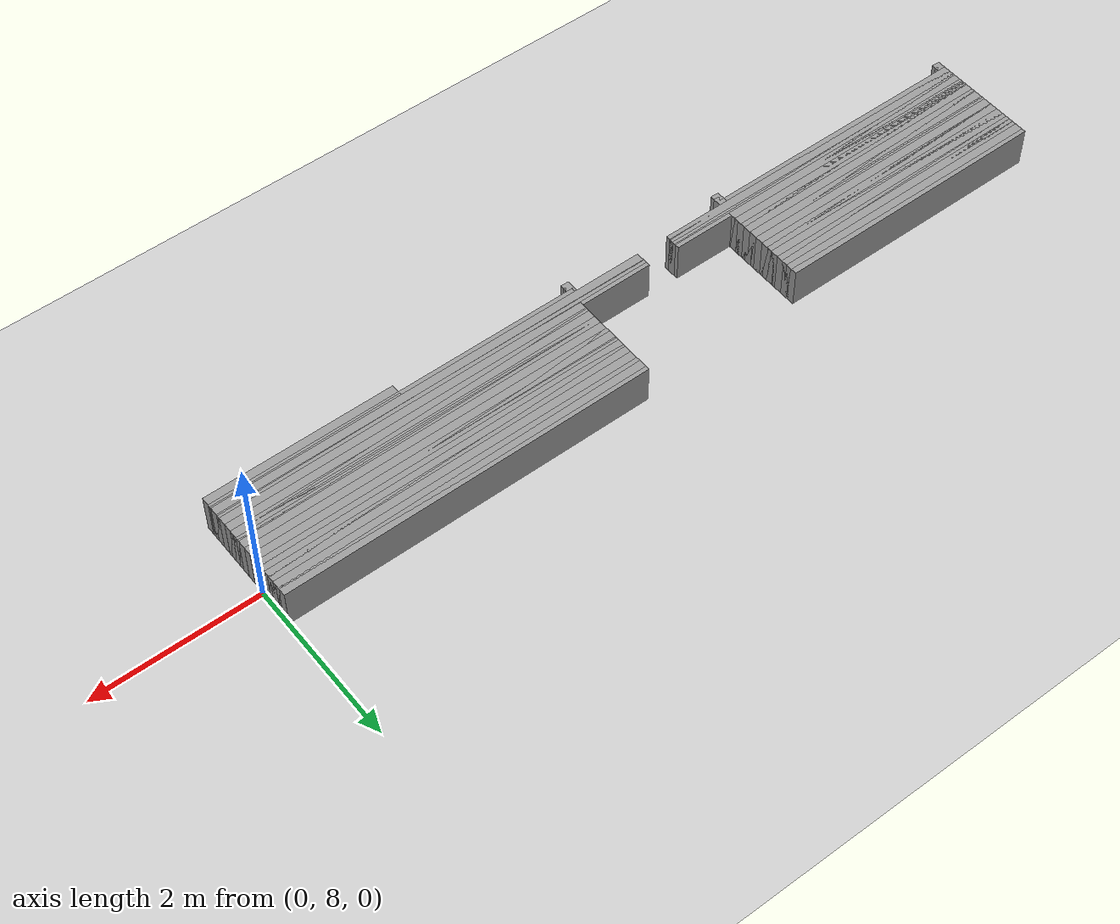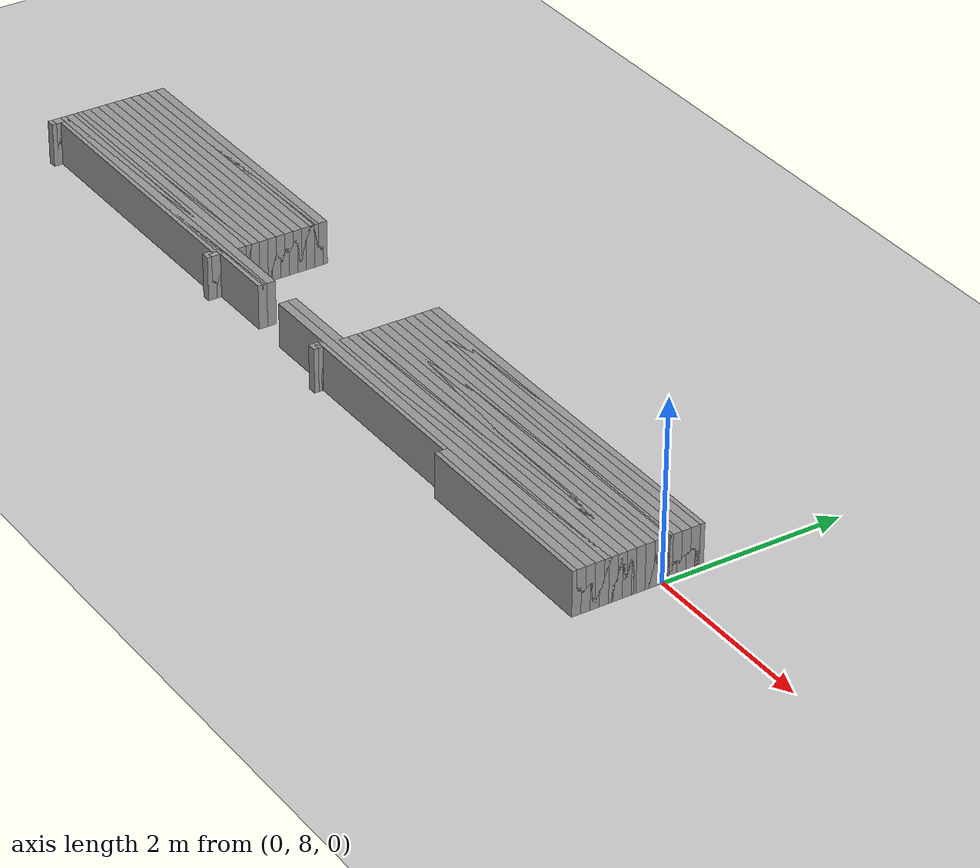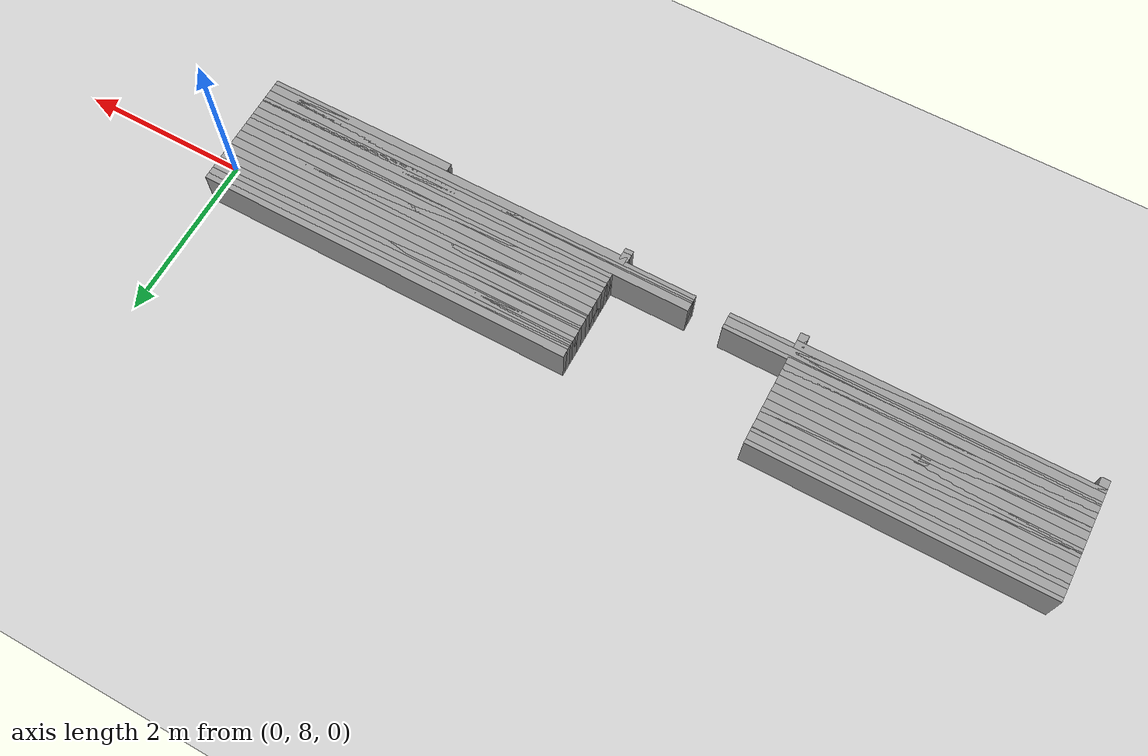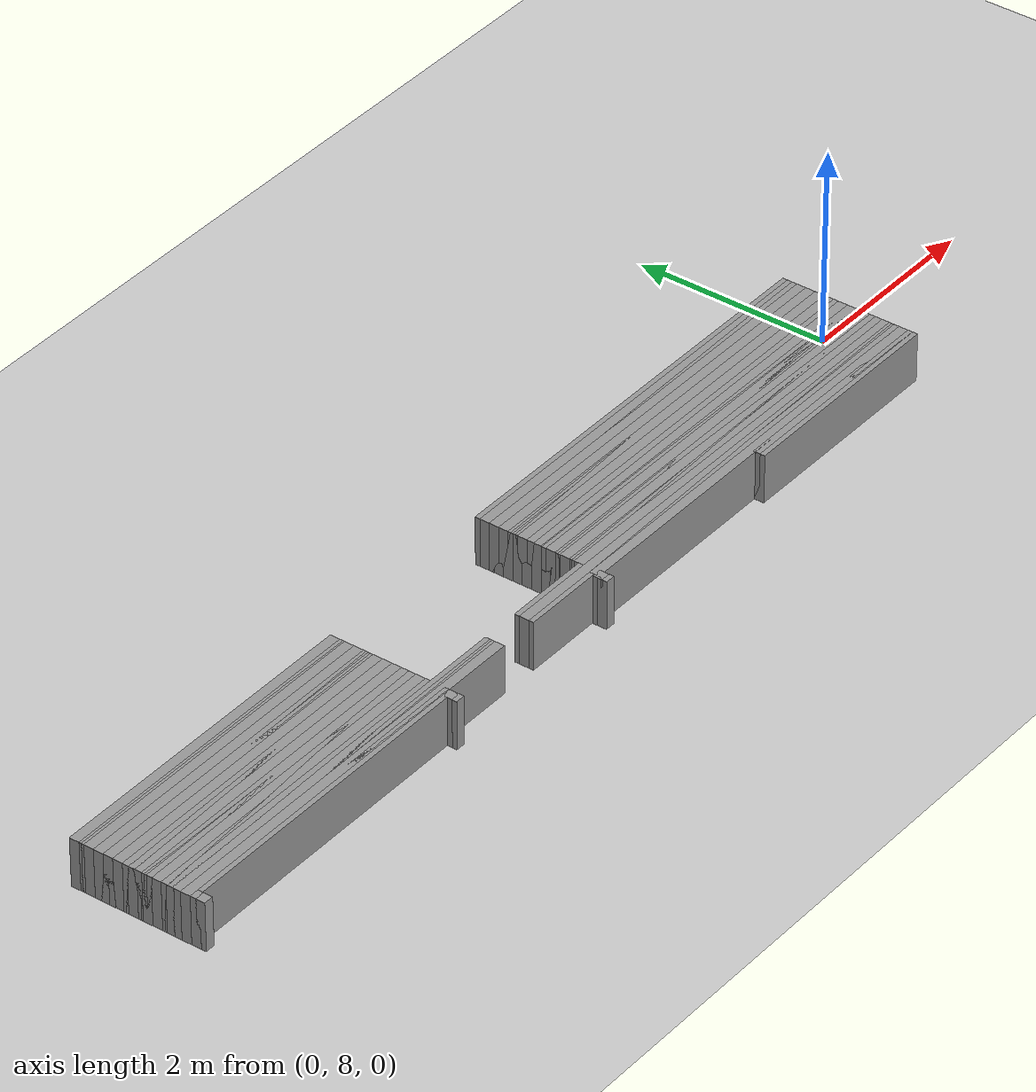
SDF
<sdf version="1.6">
 <world name="GridMap">
  <include><uri>model://sun</uri></include>
  <include><uri>model://ground_plane</uri></include>
  <model name="GridMap">
   <link name="Wall_(23.0,141.0)">
    <collision name="Wall_(23.0,141.0)_Collision">
     <geometry><box><size>2.3000000000000003 0.1 0.5</size></box></geometry>
     <pose>-1.1500000000000001 7.050000000000001 0.25 0 -0 0</pose>
    </collision>
    <inertial>
     <mass>0.5</mass>
     <pose>0 0.01 0 0 0 0</pose>
     <inertia><ixx>0.004</ixx><ixy>0.001</ixy><ixz>0</ixz><iyy>0.006</iyy><iyz>0</iyz><izz>0.007</izz></inertia>
    </inertial>
    <visual name="Wall_(23.0,141.0)_Visual">
     <geometry><box><size>2.3000000000000003 0.1 0.5</size></box></geometry>
     <pose>-1.1500000000000001 7.050000000000001 0.25 0 -0 0</pose>
     <material>
      <script><uri>file://media/materials/scripts/gazebo.material</uri><name>Gazebo/Grey</name></script>
      <ambient>1 1 1 1</ambient>
     </material>
     <meta><layer>0</layer></meta>
    </visual>
   </link>
   <link name="Wall_(90.5,141.0)">
    <collision name="Wall_(90.5,141.0)_Collision">
     <geometry><box><size>0.1 0.1 0.5</size></box></geometry>
     <pose>-4.525 7.050000000000001 0.25 0 -0 0</pose>
    </collision>
    <inertial>
     <mass>0.5</mass>
     <pose>0 0.01 0 0 0 0</pose>
     <inertia><ixx>0.004</ixx><ixy>0.001</ixy><ixz>0</ixz><iyy>0.006</iyy><iyz>0</iyz><izz>0.007</izz></inertia>
    </inertial>
    <visual name="Wall_(90.5,141.0)_Visual">
     <geometry><box><size>0.1 0.1 0.5</size></box></geometry>
     <pose>-4.525 7.050000000000001 0.25 0 -0 0</pose>
     <material>
      <script><uri>file://media/materials/scripts/gazebo.material</uri><name>Gazebo/Grey</name></script>
      <ambient>1 1 1 1</ambient>
     </material>
     <meta><layer>0</layer></meta>
    </visual>
   </link>
   <link name="Wall_(132.0,141.0)">
    <collision name="Wall_(132.0,141.0)_Collision">
     <geometry><box><size>0.1 0.1 0.5</size></box></geometry>
     <pose>-6.6000000000000005 7.050000000000001 0.25 0 -0 0</pose>
    </collision>
    <inertial>
     <mass>0.5</mass>
     <pose>0 0.01 0 0 0 0</pose>
     <inertia><ixx>0.004</ixx><ixy>0.001</ixy><ixz>0</ixz><iyy>0.006</iyy><iyz>0</iyz><izz>0.007</izz></inertia>
    </inertial>
    <visual name="Wall_(132.0,141.0)_Visual">
     <geometry><box><size>0.1 0.1 0.5</size></box></geometry>
     <pose>-6.6000000000000005 7.050000000000001 0.25 0 -0 0</pose>
     <material>
      <script><uri>file://media/materials/scripts/gazebo.material</uri><name>Gazebo/Grey</name></script>
      <ambient>1 1 1 1</ambient>
     </material>
     <meta><layer>0</layer></meta>
    </visual>
   </link>
   <link name="Wall_(198.0,141.0)">
    <collision name="Wall_(198.0,141.0)_Collision">
     <geometry><box><size>0.1 0.1 0.5</size></box></geometry>
     <pose>-9.9 7.050000000000001 0.25 0 -0 0</pose>
    </collision>
    <inertial>
     <mass>0.5</mass>
     <pose>0 0.01 0 0 0 0</pose>
     <inertia><ixx>0.004</ixx><ixy>0.001</ixy><ixz>0</ixz><iyy>0.006</iyy><iyz>0</iyz><izz>0.007</izz></inertia>
    </inertial>
    <visual name="Wall_(198.0,141.0)_Visual">
     <geometry><box><size>0.1 0.1 0.5</size></box></geometry>
     <pose>-9.9 7.050000000000001 0.25 0 -0 0</pose>
     <material>
      <script><uri>file://media/materials/scripts/gazebo.material</uri><name>Gazebo/Grey</name></script>
      <ambient>1 1 1 1</ambient>
     </material>
     <meta><layer>0</layer></meta>
    </visual>
   </link>
   <link name="Wall_(23.0,142.0)">
    <collision name="Wall_(23.0,142.0)_Collision">
     <geometry><box><size>2.3000000000000003 0.1 0.5</size></box></geometry>
     <pose>-1.1500000000000001 7.1000000000000005 0.25 0 -0 0</pose>
    </collision>
    <inertial>
     <mass>0.5</mass>
     <pose>0 0.01 0 0 0 0</pose>
     <inertia><ixx>0.004</ixx><ixy>0.001</ixy><ixz>0</ixz><iyy>0.006</iyy><iyz>0</iyz><izz>0.007</izz></inertia>
    </inertial>
    <visual name="Wall_(23.0,142.0)_Visual">
     <geometry><box><size>2.3000000000000003 0.1 0.5</size></box></geometry>
     <pose>-1.1500000000000001 7.1000000000000005 0.25 0 -0 0</pose>
     <material>
      <script><uri>file://media/materials/scripts/gazebo.material</uri><name>Gazebo/Grey</name></script>
      <ambient>1 1 1 1</ambient>
     </material>
     <meta><layer>0</layer></meta>
    </visual>
   </link>
   <link name="Wall_(90.5,142.0)">
    <collision name="Wall_(90.5,142.0)_Collision">
     <geometry><box><size>0.1 0.1 0.5</size></box></geometry>
     <pose>-4.525 7.1000000000000005 0.25 0 -0 0</pose>
    </collision>
    <inertial>
     <mass>0.5</mass>
     <pose>0 0.01 0 0 0 0</pose>
     <inertia><ixx>0.004</ixx><ixy>0.001</ixy><ixz>0</ixz><iyy>0.006</iyy><iyz>0</iyz><izz>0.007</izz></inertia>
    </inertial>
    <visual name="Wall_(90.5,142.0)_Visual">
     <geometry><box><size>0.1 0.1 0.5</size></box></geometry>
     <pose>-4.525 7.1000000000000005 0.25 0 -0 0</pose>
     <material>
      <script><uri>file://media/materials/scripts/gazebo.material</uri><name>Gazebo/Grey</name></script>
      <ambient>1 1 1 1</ambient>
     </material>
     <meta><layer>0</layer></meta>
    </visual>
   </link>
   <link name="Wall_(132.0,142.0)">
    <collision name="Wall_(132.0,142.0)_Collision">
     <geometry><box><size>0.1 0.1 0.5</size></box></geometry>
     <pose>-6.6000000000000005 7.1000000000000005 0.25 0 -0 0</pose>
    </collision>
    <inertial>
     <mass>0.5</mass>
     <pose>0 0.01 0 0 0 0</pose>
     <inertia><ixx>0.004</ixx><ixy>0.001</ixy><ixz>0</ixz><iyy>0.006</iyy><iyz>0</iyz><izz>0.007</izz></inertia>
    </inertial>
    <visual name="Wall_(132.0,142.0)_Visual">
     <geometry><box><size>0.1 0.1 0.5</size></box></geometry>
     <pose>-6.6000000000000005 7.1000000000000005 0.25 0 -0 0</pose>
     <material>
      <script><uri>file://media/materials/scripts/gazebo.material</uri><name>Gazebo/Grey</name></script>
      <ambient>1 1 1 1</ambient>
     </material>
     <meta><layer>0</layer></meta>
    </visual>
   </link>
   <link name="Wall_(198.0,142.0)">
    <collision name="Wall_(198.0,142.0)_Collision">
     <geometry><box><size>0.1 0.1 0.5</size></box></geometry>
     <pose>-9.9 7.1000000000000005 0.25 0 -0 0</pose>
    </collision>
    <inertial>
     <mass>0.5</mass>
     <pose>0 0.01 0 0 0 0</pose>
     <inertia><ixx>0.004</ixx><ixy>0.001</ixy><ixz>0</ixz><iyy>0.006</iyy><iyz>0</iyz><izz>0.007</izz></inertia>
    </inertial>
    <visual name="Wall_(198.0,142.0)_Visual">
     <geometry><box><size>0.1 0.1 0.5</size></box></geometry>
     <pose>-9.9 7.1000000000000005 0.25 0 -0 0</pose>
     <material>
      <script><uri>file://media/materials/scripts/gazebo.material</uri><name>Gazebo/Grey</name></script>
      <ambient>1 1 1 1</ambient>
     </material>
     <meta><layer>0</layer></meta>
    </visual>
   </link>
   <link name="Wall_(45.5,143.0)">
    <collision name="Wall_(45.5,143.0)_Collision">
     <geometry><box><size>4.55 0.1 0.5</size></box></geometry>
     <pose>-2.275 7.15 0.25 0 -0 0</pose>
    </collision>
    <inertial>
     <mass>0.5</mass>
     <pose>0 0.01 0 0 0 0</pose>
     <inertia><ixx>0.004</ixx><ixy>0.001</ixy><ixz>0</ixz><iyy>0.006</iyy><iyz>0</iyz><izz>0.007</izz></inertia>
    </inertial>
    <visual name="Wall_(45.5,143.0)_Visual">
     <geometry><box><size>4.55 0.1 0.5</size></box></geometry>
     <pose>-2.275 7.15 0.25 0 -0 0</pose>
     <material>
      <script><uri>file://media/materials/scripts/gazebo.material</uri><name>Gazebo/Grey</name></script>
      <ambient>1 1 1 1</ambient>
     </material>
     <meta><layer>0</layer></meta>
    </visual>
   </link>
   <link name="Wall_(165.0,143.0)">
    <collision name="Wall_(165.0,143.0)_Collision">
     <geometry><box><size>3.4000000000000004 0.1 0.5</size></box></geometry>
     <pose>-8.25 7.15 0.25 0 -0 0</pose>
    </collision>
    <inertial>
     <mass>0.5</mass>
     <pose>0 0.01 0 0 0 0</pose>
     <inertia><ixx>0.004</ixx><ixy>0.001</ixy><ixz>0</ixz><iyy>0.006</iyy><iyz>0</iyz><izz>0.007</izz></inertia>
    </inertial>
    <visual name="Wall_(165.0,143.0)_Visual">
     <geometry><box><size>3.4000000000000004 0.1 0.5</size></box></geometry>
     <pose>-8.25 7.15 0.25 0 -0 0</pose>
     <material>
      <script><uri>file://media/materials/scripts/gazebo.material</uri><name>Gazebo/Grey</name></script>
      <ambient>1 1 1 1</ambient>
     </material>
     <meta><layer>0</layer></meta>
    </visual>
   </link>
   <link name="Wall_(54.0,144.0)">
    <collision name="Wall_(54.0,144.0)_Collision">
     <geometry><box><size>5.4 0.1 0.5</size></box></geometry>
     <pose>-2.7 7.2 0.25 0 -0 0</pose>
    </collision>
    <inertial>
     <mass>0.5</mass>
     <pose>0 0.01 0 0 0 0</pose>
     <inertia><ixx>0.004</ixx><ixy>0.001</ixy><ixz>0</ixz><iyy>0.006</iyy><iyz>0</iyz><izz>0.007</izz></inertia>
    </inertial>
    <visual name="Wall_(54.0,144.0)_Visual">
     <geometry><box><size>5.4 0.1 0.5</size></box></geometry>
     <pose>-2.7 7.2 0.25 0 -0 0</pose>
     <material>
      <script><uri>file://media/materials/scripts/gazebo.material</uri><name>Gazebo/Grey</name></script>
      <ambient>1 1 1 1</ambient>
     </material>
     <meta><layer>0</layer></meta>
    </visual>
   </link>
   <link name="Wall_(157.5,144.0)">
    <collision name="Wall_(157.5,144.0)_Collision">
     <geometry><box><size>4.15 0.1 0.5</size></box></geometry>
     <pose>-7.875 7.2 0.25 0 -0 0</pose>
    </collision>
    <inertial>
     <mass>0.5</mass>
     <pose>0 0.01 0 0 0 0</pose>
     <inertia><ixx>0.004</ixx><ixy>0.001</ixy><ixz>0</ixz><iyy>0.006</iyy><iyz>0</iyz><izz>0.007</izz></inertia>
    </inertial>
    <visual name="Wall_(157.5,144.0)_Visual">
     <geometry><box><size>4.15 0.1 0.5</size></box></geometry>
     <pose>-7.875 7.2 0.25 0 -0 0</pose>
     <material>
      <script><uri>file://media/materials/scripts/gazebo.material</uri><name>Gazebo/Grey</name></script>
      <ambient>1 1 1 1</ambient>
     </material>
     <meta><layer>0</layer></meta>
    </visual>
   </link>
   <link name="Wall_(54.0,145.0)">
    <collision name="Wall_(54.0,145.0)_Collision">
     <geometry><box><size>5.4 0.1 0.5</size></box></geometry>
     <pose>-2.7 7.25 0.25 0 -0 0</pose>
    </collision>
    <inertial>
     <mass>0.5</mass>
     <pose>0 0.01 0 0 0 0</pose>
     <inertia><ixx>0.004</ixx><ixy>0.001</ixy><ixz>0</ixz><iyy>0.006</iyy><iyz>0</iyz><izz>0.007</izz></inertia>
    </inertial>
    <visual name="Wall_(54.0,145.0)_Visual">
     <geometry><box><size>5.4 0.1 0.5</size></box></geometry>
     <pose>-2.7 7.25 0.25 0 -0 0</pose>
     <material>
      <script><uri>file://media/materials/scripts/gazebo.material</uri><name>Gazebo/Grey</name></script>
      <ambient>1 1 1 1</ambient>
     </material>
     <meta><layer>0</layer></meta>
    </visual>
   </link>
   <link name="Wall_(157.5,145.0)">
    <collision name="Wall_(157.5,145.0)_Collision">
     <geometry><box><size>4.15 0.1 0.5</size></box></geometry>
     <pose>-7.875 7.25 0.25 0 -0 0</pose>
    </collision>
    <inertial>
     <mass>0.5</mass>
     <pose>0 0.01 0 0 0 0</pose>
     <inertia><ixx>0.004</ixx><ixy>0.001</ixy><ixz>0</ixz><iyy>0.006</iyy><iyz>0</iyz><izz>0.007</izz></inertia>
    </inertial>
    <visual name="Wall_(157.5,145.0)_Visual">
     <geometry><box><size>4.15 0.1 0.5</size></box></geometry>
     <pose>-7.875 7.25 0.25 0 -0 0</pose>
     <material>
      <script><uri>file://media/materials/scripts/gazebo.material</uri><name>Gazebo/Grey</name></script>
      <ambient>1 1 1 1</ambient>
     </material>
     <meta><layer>0</layer></meta>
    </visual>
   </link>
   <link name="Wall_(54.0,146.0)">
    <collision name="Wall_(54.0,146.0)_Collision">
     <geometry><box><size>5.4 0.1 0.5</size></box></geometry>
     <pose>-2.7 7.300000000000001 0.25 0 -0 0</pose>
    </collision>
    <inertial>
     <mass>0.5</mass>
     <pose>0 0.01 0 0 0 0</pose>
     <inertia><ixx>0.004</ixx><ixy>0.001</ixy><ixz>0</ixz><iyy>0.006</iyy><iyz>0</iyz><izz>0.007</izz></inertia>
    </inertial>
    <visual name="Wall_(54.0,146.0)_Visual">
     <geometry><box><size>5.4 0.1 0.5</size></box></geometry>
     <pose>-2.7 7.300000000000001 0.25 0 -0 0</pose>
     <material>
      <script><uri>file://media/materials/scripts/gazebo.material</uri><name>Gazebo/Grey</name></script>
      <ambient>1 1 1 1</ambient>
     </material>
     <meta><layer>0</layer></meta>
    </visual>
   </link>
   <link name="Wall_(157.5,146.0)">
    <collision name="Wall_(157.5,146.0)_Collision">
     <geometry><box><size>4.15 0.1 0.5</size></box></geometry>
     <pose>-7.875 7.300000000000001 0.25 0 -0 0</pose>
    </collision>
    <inertial>
     <mass>0.5</mass>
     <pose>0 0.01 0 0 0 0</pose>
     <inertia><ixx>0.004</ixx><ixy>0.001</ixy><ixz>0</ixz><iyy>0.006</iyy><iyz>0</iyz><izz>0.007</izz></inertia>
    </inertial>
    <visual name="Wall_(157.5,146.0)_Visual">
     <geometry><box><size>4.15 0.1 0.5</size></box></geometry>
     <pose>-7.875 7.300000000000001 0.25 0 -0 0</pose>
     <material>
      <script><uri>file://media/materials/scripts/gazebo.material</uri><name>Gazebo/Grey</name></script>
      <ambient>1 1 1 1</ambient>
     </material>
     <meta><layer>0</layer></meta>
    </visual>
   </link>
   <link name="Wall_(45.0,147.0)">
    <collision name="Wall_(45.0,147.0)_Collision">
     <geometry><box><size>4.5 0.1 0.5</size></box></geometry>
     <pose>-2.25 7.3500000000000005 0.25 0 -0 0</pose>
    </collision>
    <inertial>
     <mass>0.5</mass>
     <pose>0 0.01 0 0 0 0</pose>
     <inertia><ixx>0.004</ixx><ixy>0.001</ixy><ixz>0</ixz><iyy>0.006</iyy><iyz>0</iyz><izz>0.007</izz></inertia>
    </inertial>
    <visual name="Wall_(45.0,147.0)_Visual">
     <geometry><box><size>4.5 0.1 0.5</size></box></geometry>
     <pose>-2.25 7.3500000000000005 0.25 0 -0 0</pose>
     <material>
      <script><uri>file://media/materials/scripts/gazebo.material</uri><name>Gazebo/Grey</name></script>
      <ambient>1 1 1 1</ambient>
     </material>
     <meta><layer>0</layer></meta>
    </visual>
   </link>
   <link name="Wall_(165.0,147.0)">
    <collision name="Wall_(165.0,147.0)_Collision">
     <geometry><box><size>3.4000000000000004 0.1 0.5</size></box></geometry>
     <pose>-8.25 7.3500000000000005 0.25 0 -0 0</pose>
    </collision>
    <inertial>
     <mass>0.5</mass>
     <pose>0 0.01 0 0 0 0</pose>
     <inertia><ixx>0.004</ixx><ixy>0.001</ixy><ixz>0</ixz><iyy>0.006</iyy><iyz>0</iyz><izz>0.007</izz></inertia>
    </inertial>
    <visual name="Wall_(165.0,147.0)_Visual">
     <geometry><box><size>3.4000000000000004 0.1 0.5</size></box></geometry>
     <pose>-8.25 7.3500000000000005 0.25 0 -0 0</pose>
     <material>
      <script><uri>file://media/materials/scripts/gazebo.material</uri><name>Gazebo/Grey</name></script>
      <ambient>1 1 1 1</ambient>
     </material>
     <meta><layer>0</layer></meta>
    </visual>
   </link>
   <link name="Wall_(45.0,148.0)">
    <collision name="Wall_(45.0,148.0)_Collision">
     <geometry><box><size>4.5 0.1 0.5</size></box></geometry>
     <pose>-2.25 7.4 0.25 0 -0 0</pose>
    </collision>
    <inertial>
     <mass>0.5</mass>
     <pose>0 0.01 0 0 0 0</pose>
     <inertia><ixx>0.004</ixx><ixy>0.001</ixy><ixz>0</ixz><iyy>0.006</iyy><iyz>0</iyz><izz>0.007</izz></inertia>
    </inertial>
    <visual name="Wall_(45.0,148.0)_Visual">
     <geometry><box><size>4.5 0.1 0.5</size></box></geometry>
     <pose>-2.25 7.4 0.25 0 -0 0</pose>
     <material>
      <script><uri>file://media/materials/scripts/gazebo.material</uri><name>Gazebo/Grey</name></script>
      <ambient>1 1 1 1</ambient>
     </material>
     <meta><layer>0</layer></meta>
    </visual>
   </link>
   <link name="Wall_(165.0,148.0)">
    <collision name="Wall_(165.0,148.0)_Collision">
     <geometry><box><size>3.4000000000000004 0.1 0.5</size></box></geometry>
     <pose>-8.25 7.4 0.25 0 -0 0</pose>
    </collision>
    <inertial>
     <mass>0.5</mass>
     <pose>0 0.01 0 0 0 0</pose>
     <inertia><ixx>0.004</ixx><ixy>0.001</ixy><ixz>0</ixz><iyy>0.006</iyy><iyz>0</iyz><izz>0.007</izz></inertia>
    </inertial>
    <visual name="Wall_(165.0,148.0)_Visual">
     <geometry><box><size>3.4000000000000004 0.1 0.5</size></box></geometry>
     <pose>-8.25 7.4 0.25 0 -0 0</pose>
     <material>
      <script><uri>file://media/materials/scripts/gazebo.material</uri><name>Gazebo/Grey</name></script>
      <ambient>1 1 1 1</ambient>
     </material>
     <meta><layer>0</layer></meta>
    </visual>
   </link>
   <link name="Wall_(45.0,149.0)">
    <collision name="Wall_(45.0,149.0)_Collision">
     <geometry><box><size>4.5 0.1 0.5</size></box></geometry>
     <pose>-2.25 7.45 0.25 0 -0 0</pose>
    </collision>
    <inertial>
     <mass>0.5</mass>
     <pose>0 0.01 0 0 0 0</pose>
     <inertia><ixx>0.004</ixx><ixy>0.001</ixy><ixz>0</ixz><iyy>0.006</iyy><iyz>0</iyz><izz>0.007</izz></inertia>
    </inertial>
    <visual name="Wall_(45.0,149.0)_Visual">
     <geometry><box><size>4.5 0.1 0.5</size></box></geometry>
     <pose>-2.25 7.45 0.25 0 -0 0</pose>
     <material>
      <script><uri>file://media/materials/scripts/gazebo.material</uri><name>Gazebo/Grey</name></script>
      <ambient>1 1 1 1</ambient>
     </material>
     <meta><layer>0</layer></meta>
    </visual>
   </link>
   <link name="Wall_(165.0,149.0)">
    <collision name="Wall_(165.0,149.0)_Collision">
     <geometry><box><size>3.4000000000000004 0.1 0.5</size></box></geometry>
     <pose>-8.25 7.45 0.25 0 -0 0</pose>
    </collision>
    <inertial>
     <mass>0.5</mass>
     <pose>0 0.01 0 0 0 0</pose>
     <inertia><ixx>0.004</ixx><ixy>0.001</ixy><ixz>0</ixz><iyy>0.006</iyy><iyz>0</iyz><izz>0.007</izz></inertia>
    </inertial>
    <visual name="Wall_(165.0,149.0)_Visual">
     <geometry><box><size>3.4000000000000004 0.1 0.5</size></box></geometry>
     <pose>-8.25 7.45 0.25 0 -0 0</pose>
     <material>
      <script><uri>file://media/materials/scripts/gazebo.material</uri><name>Gazebo/Grey</name></script>
      <ambient>1 1 1 1</ambient>
     </material>
     <meta><layer>0</layer></meta>
    </visual>
   </link>
   <link name="Wall_(45.0,150.0)">
    <collision name="Wall_(45.0,150.0)_Collision">
     <geometry><box><size>4.5 0.1 0.5</size></box></geometry>
     <pose>-2.25 7.5 0.25 0 -0 0</pose>
    </collision>
    <inertial>
     <mass>0.5</mass>
     <pose>0 0.01 0 0 0 0</pose>
     <inertia><ixx>0.004</ixx><ixy>0.001</ixy><ixz>0</ixz><iyy>0.006</iyy><iyz>0</iyz><izz>0.007</izz></inertia>
    </inertial>
    <visual name="Wall_(45.0,150.0)_Visual">
     <geometry><box><size>4.5 0.1 0.5</size></box></geometry>
     <pose>-2.25 7.5 0.25 0 -0 0</pose>
     <material>
      <script><uri>file://media/materials/scripts/gazebo.material</uri><name>Gazebo/Grey</name></script>
      <ambient>1 1 1 1</ambient>
     </material>
     <meta><layer>0</layer></meta>
    </visual>
   </link>
   <link name="Wall_(165.0,150.0)">
    <collision name="Wall_(165.0,150.0)_Collision">
     <geometry><box><size>3.4000000000000004 0.1 0.5</size></box></geometry>
     <pose>-8.25 7.5 0.25 0 -0 0</pose>
    </collision>
    <inertial>
     <mass>0.5</mass>
     <pose>0 0.01 0 0 0 0</pose>
     <inertia><ixx>0.004</ixx><ixy>0.001</ixy><ixz>0</ixz><iyy>0.006</iyy><iyz>0</iyz><izz>0.007</izz></inertia>
    </inertial>
    <visual name="Wall_(165.0,150.0)_Visual">
     <geometry><box><size>3.4000000000000004 0.1 0.5</size></box></geometry>
     <pose>-8.25 7.5 0.25 0 -0 0</pose>
     <material>
      <script><uri>file://media/materials/scripts/gazebo.material</uri><name>Gazebo/Grey</name></script>
      <ambient>1 1 1 1</ambient>
     </material>
     <meta><layer>0</layer></meta>
    </visual>
   </link>
   <link name="Wall_(45.0,151.0)">
    <collision name="Wall_(45.0,151.0)_Collision">
     <geometry><box><size>4.5 0.1 0.5</size></box></geometry>
     <pose>-2.25 7.550000000000001 0.25 0 -0 0</pose>
    </collision>
    <inertial>
     <mass>0.5</mass>
     <pose>0 0.01 0 0 0 0</pose>
     <inertia><ixx>0.004</ixx><ixy>0.001</ixy><ixz>0</ixz><iyy>0.006</iyy><iyz>0</iyz><izz>0.007</izz></inertia>
    </inertial>
    <visual name="Wall_(45.0,151.0)_Visual">
     <geometry><box><size>4.5 0.1 0.5</size></box></geometry>
     <pose>-2.25 7.550000000000001 0.25 0 -0 0</pose>
     <material>
      <script><uri>file://media/materials/scripts/gazebo.material</uri><name>Gazebo/Grey</name></script>
      <ambient>1 1 1 1</ambient>
     </material>
     <meta><layer>0</layer></meta>
    </visual>
   </link>
   <link name="Wall_(165.0,151.0)">
    <collision name="Wall_(165.0,151.0)_Collision">
     <geometry><box><size>3.4000000000000004 0.1 0.5</size></box></geometry>
     <pose>-8.25 7.550000000000001 0.25 0 -0 0</pose>
    </collision>
    <inertial>
     <mass>0.5</mass>
     <pose>0 0.01 0 0 0 0</pose>
     <inertia><ixx>0.004</ixx><ixy>0.001</ixy><ixz>0</ixz><iyy>0.006</iyy><iyz>0</iyz><izz>0.007</izz></inertia>
    </inertial>
    <visual name="Wall_(165.0,151.0)_Visual">
     <geometry><box><size>3.4000000000000004 0.1 0.5</size></box></geometry>
     <pose>-8.25 7.550000000000001 0.25 0 -0 0</pose>
     <material>
      <script><uri>file://media/materials/scripts/gazebo.material</uri><name>Gazebo/Grey</name></script>
      <ambient>1 1 1 1</ambient>
     </material>
     <meta><layer>0</layer></meta>
    </visual>
   </link>
   <link name="Wall_(45.0,152.0)">
    <collision name="Wall_(45.0,152.0)_Collision">
     <geometry><box><size>4.5 0.1 0.5</size></box></geometry>
     <pose>-2.25 7.6000000000000005 0.25 0 -0 0</pose>
    </collision>
    <inertial>
     <mass>0.5</mass>
     <pose>0 0.01 0 0 0 0</pose>
     <inertia><ixx>0.004</ixx><ixy>0.001</ixy><ixz>0</ixz><iyy>0.006</iyy><iyz>0</iyz><izz>0.007</izz></inertia>
    </inertial>
    <visual name="Wall_(45.0,152.0)_Visual">
     <geometry><box><size>4.5 0.1 0.5</size></box></geometry>
     <pose>-2.25 7.6000000000000005 0.25 0 -0 0</pose>
     <material>
      <script><uri>file://media/materials/scripts/gazebo.material</uri><name>Gazebo/Grey</name></script>
      <ambient>1 1 1 1</ambient>
     </material>
     <meta><layer>0</layer></meta>
    </visual>
   </link>
   <link name="Wall_(165.0,152.0)">
    <collision name="Wall_(165.0,152.0)_Collision">
     <geometry><box><size>3.4000000000000004 0.1 0.5</size></box></geometry>
     <pose>-8.25 7.6000000000000005 0.25 0 -0 0</pose>
    </collision>
    <inertial>
     <mass>0.5</mass>
     <pose>0 0.01 0 0 0 0</pose>
     <inertia><ixx>0.004</ixx><ixy>0.001</ixy><ixz>0</ixz><iyy>0.006</iyy><iyz>0</iyz><izz>0.007</izz></inertia>
    </inertial>
    <visual name="Wall_(165.0,152.0)_Visual">
     <geometry><box><size>3.4000000000000004 0.1 0.5</size></box></geometry>
     <pose>-8.25 7.6000000000000005 0.25 0 -0 0</pose>
     <material>
      <script><uri>file://media/materials/scripts/gazebo.material</uri><name>Gazebo/Grey</name></script>
      <ambient>1 1 1 1</ambient>
     </material>
     <meta><layer>0</layer></meta>
    </visual>
   </link>
   <link name="Wall_(45.0,153.0)">
    <collision name="Wall_(45.0,153.0)_Collision">
     <geometry><box><size>4.5 0.1 0.5</size></box></geometry>
     <pose>-2.25 7.65 0.25 0 -0 0</pose>
    </collision>
    <inertial>
     <mass>0.5</mass>
     <pose>0 0.01 0 0 0 0</pose>
     <inertia><ixx>0.004</ixx><ixy>0.001</ixy><ixz>0</ixz><iyy>0.006</iyy><iyz>0</iyz><izz>0.007</izz></inertia>
    </inertial>
    <visual name="Wall_(45.0,153.0)_Visual">
     <geometry><box><size>4.5 0.1 0.5</size></box></geometry>
     <pose>-2.25 7.65 0.25 0 -0 0</pose>
     <material>
      <script><uri>file://media/materials/scripts/gazebo.material</uri><name>Gazebo/Grey</name></script>
      <ambient>1 1 1 1</ambient>
     </material>
     <meta><layer>0</layer></meta>
    </visual>
   </link>
   <link name="Wall_(165.0,153.0)">
    <collision name="Wall_(165.0,153.0)_Collision">
     <geometry><box><size>3.4000000000000004 0.1 0.5</size></box></geometry>
     <pose>-8.25 7.65 0.25 0 -0 0</pose>
    </collision>
    <inertial>
     <mass>0.5</mass>
     <pose>0 0.01 0 0 0 0</pose>
     <inertia><ixx>0.004</ixx><ixy>0.001</ixy><ixz>0</ixz><iyy>0.006</iyy><iyz>0</iyz><izz>0.007</izz></inertia>
    </inertial>
    <visual name="Wall_(165.0,153.0)_Visual">
     <geometry><box><size>3.4000000000000004 0.1 0.5</size></box></geometry>
     <pose>-8.25 7.65 0.25 0 -0 0</pose>
     <material>
      <script><uri>file://media/materials/scripts/gazebo.material</uri><name>Gazebo/Grey</name></script>
      <ambient>1 1 1 1</ambient>
     </material>
     <meta><layer>0</layer></meta>
    </visual>
   </link>
   <link name="Wall_(45.0,154.0)">
    <collision name="Wall_(45.0,154.0)_Collision">
     <geometry><box><size>4.5 0.1 0.5</size></box></geometry>
     <pose>-2.25 7.7 0.25 0 -0 0</pose>
    </collision>
    <inertial>
     <mass>0.5</mass>
     <pose>0 0.01 0 0 0 0</pose>
     <inertia><ixx>0.004</ixx><ixy>0.001</ixy><ixz>0</ixz><iyy>0.006</iyy><iyz>0</iyz><izz>0.007</izz></inertia>
    </inertial>
    <visual name="Wall_(45.0,154.0)_Visual">
     <geometry><box><size>4.5 0.1 0.5</size></box></geometry>
     <pose>-2.25 7.7 0.25 0 -0 0</pose>
     <material>
      <script><uri>file://media/materials/scripts/gazebo.material</uri><name>Gazebo/Grey</name></script>
      <ambient>1 1 1 1</ambient>
     </material>
     <meta><layer>0</layer></meta>
    </visual>
   </link>
   <link name="Wall_(165.0,154.0)">
    <collision name="Wall_(165.0,154.0)_Collision">
     <geometry><box><size>3.4000000000000004 0.1 0.5</size></box></geometry>
     <pose>-8.25 7.7 0.25 0 -0 0</pose>
    </collision>
    <inertial>
     <mass>0.5</mass>
     <pose>0 0.01 0 0 0 0</pose>
     <inertia><ixx>0.004</ixx><ixy>0.001</ixy><ixz>0</ixz><iyy>0.006</iyy><iyz>0</iyz><izz>0.007</izz></inertia>
    </inertial>
    <visual name="Wall_(165.0,154.0)_Visual">
     <geometry><box><size>3.4000000000000004 0.1 0.5</size></box></geometry>
     <pose>-8.25 7.7 0.25 0 -0 0</pose>
     <material>
      <script><uri>file://media/materials/scripts/gazebo.material</uri><name>Gazebo/Grey</name></script>
      <ambient>1 1 1 1</ambient>
     </material>
     <meta><layer>0</layer></meta>
    </visual>
   </link>
   <link name="Wall_(45.0,155.0)">
    <collision name="Wall_(45.0,155.0)_Collision">
     <geometry><box><size>4.5 0.1 0.5</size></box></geometry>
     <pose>-2.25 7.75 0.25 0 -0 0</pose>
    </collision>
    <inertial>
     <mass>0.5</mass>
     <pose>0 0.01 0 0 0 0</pose>
     <inertia><ixx>0.004</ixx><ixy>0.001</ixy><ixz>0</ixz><iyy>0.006</iyy><iyz>0</iyz><izz>0.007</izz></inertia>
    </inertial>
    <visual name="Wall_(45.0,155.0)_Visual">
     <geometry><box><size>4.5 0.1 0.5</size></box></geometry>
     <pose>-2.25 7.75 0.25 0 -0 0</pose>
     <material>
      <script><uri>file://media/materials/scripts/gazebo.material</uri><name>Gazebo/Grey</name></script>
      <ambient>1 1 1 1</ambient>
     </material>
     <meta><layer>0</layer></meta>
    </visual>
   </link>
   <link name="Wall_(165.0,155.0)">
    <collision name="Wall_(165.0,155.0)_Collision">
     <geometry><box><size>3.4000000000000004 0.1 0.5</size></box></geometry>
     <pose>-8.25 7.75 0.25 0 -0 0</pose>
    </collision>
    <inertial>
     <mass>0.5</mass>
     <pose>0 0.01 0 0 0 0</pose>
     <inertia><ixx>0.004</ixx><ixy>0.001</ixy><ixz>0</ixz><iyy>0.006</iyy><iyz>0</iyz><izz>0.007</izz></inertia>
    </inertial>
    <visual name="Wall_(165.0,155.0)_Visual">
     <geometry><box><size>3.4000000000000004 0.1 0.5</size></box></geometry>
     <pose>-8.25 7.75 0.25 0 -0 0</pose>
     <material>
      <script><uri>file://media/materials/scripts/gazebo.material</uri><name>Gazebo/Grey</name></script>
      <ambient>1 1 1 1</ambient>
     </material>
     <meta><layer>0</layer></meta>
    </visual>
   </link>
   <link name="Wall_(45.0,156.0)">
    <collision name="Wall_(45.0,156.0)_Collision">
     <geometry><box><size>4.5 0.1 0.5</size></box></geometry>
     <pose>-2.25 7.800000000000001 0.25 0 -0 0</pose>
    </collision>
    <inertial>
     <mass>0.5</mass>
     <pose>0 0.01 0 0 0 0</pose>
     <inertia><ixx>0.004</ixx><ixy>0.001</ixy><ixz>0</ixz><iyy>0.006</iyy><iyz>0</iyz><izz>0.007</izz></inertia>
    </inertial>
    <visual name="Wall_(45.0,156.0)_Visual">
     <geometry><box><size>4.5 0.1 0.5</size></box></geometry>
     <pose>-2.25 7.800000000000001 0.25 0 -0 0</pose>
     <material>
      <script><uri>file://media/materials/scripts/gazebo.material</uri><name>Gazebo/Grey</name></script>
      <ambient>1 1 1 1</ambient>
     </material>
     <meta><layer>0</layer></meta>
    </visual>
   </link>
   <link name="Wall_(165.0,156.0)">
    <collision name="Wall_(165.0,156.0)_Collision">
     <geometry><box><size>3.4000000000000004 0.1 0.5</size></box></geometry>
     <pose>-8.25 7.800000000000001 0.25 0 -0 0</pose>
    </collision>
    <inertial>
     <mass>0.5</mass>
     <pose>0 0.01 0 0 0 0</pose>
     <inertia><ixx>0.004</ixx><ixy>0.001</ixy><ixz>0</ixz><iyy>0.006</iyy><iyz>0</iyz><izz>0.007</izz></inertia>
    </inertial>
    <visual name="Wall_(165.0,156.0)_Visual">
     <geometry><box><size>3.4000000000000004 0.1 0.5</size></box></geometry>
     <pose>-8.25 7.800000000000001 0.25 0 -0 0</pose>
     <material>
      <script><uri>file://media/materials/scripts/gazebo.material</uri><name>Gazebo/Grey</name></script>
      <ambient>1 1 1 1</ambient>
     </material>
     <meta><layer>0</layer></meta>
    </visual>
   </link>
   <link name="Wall_(45.0,157.0)">
    <collision name="Wall_(45.0,157.0)_Collision">
     <geometry><box><size>4.5 0.1 0.5</size></box></geometry>
     <pose>-2.25 7.8500000000000005 0.25 0 -0 0</pose>
    </collision>
    <inertial>
     <mass>0.5</mass>
     <pose>0 0.01 0 0 0 0</pose>
     <inertia><ixx>0.004</ixx><ixy>0.001</ixy><ixz>0</ixz><iyy>0.006</iyy><iyz>0</iyz><izz>0.007</izz></inertia>
    </inertial>
    <visual name="Wall_(45.0,157.0)_Visual">
     <geometry><box><size>4.5 0.1 0.5</size></box></geometry>
     <pose>-2.25 7.8500000000000005 0.25 0 -0 0</pose>
     <material>
      <script><uri>file://media/materials/scripts/gazebo.material</uri><name>Gazebo/Grey</name></script>
      <ambient>1 1 1 1</ambient>
     </material>
     <meta><layer>0</layer></meta>
    </visual>
   </link>
   <link name="Wall_(165.0,157.0)">
    <collision name="Wall_(165.0,157.0)_Collision">
     <geometry><box><size>3.4000000000000004 0.1 0.5</size></box></geometry>
     <pose>-8.25 7.8500000000000005 0.25 0 -0 0</pose>
    </collision>
    <inertial>
     <mass>0.5</mass>
     <pose>0 0.01 0 0 0 0</pose>
     <inertia><ixx>0.004</ixx><ixy>0.001</ixy><ixz>0</ixz><iyy>0.006</iyy><iyz>0</iyz><izz>0.007</izz></inertia>
    </inertial>
    <visual name="Wall_(165.0,157.0)_Visual">
     <geometry><box><size>3.4000000000000004 0.1 0.5</size></box></geometry>
     <pose>-8.25 7.8500000000000005 0.25 0 -0 0</pose>
     <material>
      <script><uri>file://media/materials/scripts/gazebo.material</uri><name>Gazebo/Grey</name></script>
      <ambient>1 1 1 1</ambient>
     </material>
     <meta><layer>0</layer></meta>
    </visual>
   </link>
   <link name="Wall_(45.0,158.0)">
    <collision name="Wall_(45.0,158.0)_Collision">
     <geometry><box><size>4.5 0.1 0.5</size></box></geometry>
     <pose>-2.25 7.9 0.25 0 -0 0</pose>
    </collision>
    <inertial>
     <mass>0.5</mass>
     <pose>0 0.01 0 0 0 0</pose>
     <inertia><ixx>0.004</ixx><ixy>0.001</ixy><ixz>0</ixz><iyy>0.006</iyy><iyz>0</iyz><izz>0.007</izz></inertia>
    </inertial>
    <visual name="Wall_(45.0,158.0)_Visual">
     <geometry><box><size>4.5 0.1 0.5</size></box></geometry>
     <pose>-2.25 7.9 0.25 0 -0 0</pose>
     <material>
      <script><uri>file://media/materials/scripts/gazebo.material</uri><name>Gazebo/Grey</name></script>
      <ambient>1 1 1 1</ambient>
     </material>
     <meta><layer>0</layer></meta>
    </visual>
   </link>
   <link name="Wall_(165.0,158.0)">
    <collision name="Wall_(165.0,158.0)_Collision">
     <geometry><box><size>3.4000000000000004 0.1 0.5</size></box></geometry>
     <pose>-8.25 7.9 0.25 0 -0 0</pose>
    </collision>
    <inertial>
     <mass>0.5</mass>
     <pose>0 0.01 0 0 0 0</pose>
     <inertia><ixx>0.004</ixx><ixy>0.001</ixy><ixz>0</ixz><iyy>0.006</iyy><iyz>0</iyz><izz>0.007</izz></inertia>
    </inertial>
    <visual name="Wall_(165.0,158.0)_Visual">
     <geometry><box><size>3.4000000000000004 0.1 0.5</size></box></geometry>
     <pose>-8.25 7.9 0.25 0 -0 0</pose>
     <material>
      <script><uri>file://media/materials/scripts/gazebo.material</uri><name>Gazebo/Grey</name></script>
      <ambient>1 1 1 1</ambient>
     </material>
     <meta><layer>0</layer></meta>
    </visual>
   </link>
   <link name="Wall_(45.0,159.0)">
    <collision name="Wall_(45.0,159.0)_Collision">
     <geometry><box><size>4.5 0.1 0.5</size></box></geometry>
     <pose>-2.25 7.95 0.25 0 -0 0</pose>
    </collision>
    <inertial>
     <mass>0.5</mass>
     <pose>0 0.01 0 0 0 0</pose>
     <inertia><ixx>0.004</ixx><ixy>0.001</ixy><ixz>0</ixz><iyy>0.006</iyy><iyz>0</iyz><izz>0.007</izz></inertia>
    </inertial>
    <visual name="Wall_(45.0,159.0)_Visual">
     <geometry><box><size>4.5 0.1 0.5</size></box></geometry>
     <pose>-2.25 7.95 0.25 0 -0 0</pose>
     <material>
      <script><uri>file://media/materials/scripts/gazebo.material</uri><name>Gazebo/Grey</name></script>
      <ambient>1 1 1 1</ambient>
     </material>
     <meta><layer>0</layer></meta>
    </visual>
   </link>
   <link name="Wall_(165.0,159.0)">
    <collision name="Wall_(165.0,159.0)_Collision">
     <geometry><box><size>3.4000000000000004 0.1 0.5</size></box></geometry>
     <pose>-8.25 7.95 0.25 0 -0 0</pose>
    </collision>
    <inertial>
     <mass>0.5</mass>
     <pose>0 0.01 0 0 0 0</pose>
     <inertia><ixx>0.004</ixx><ixy>0.001</ixy><ixz>0</ixz><iyy>0.006</iyy><iyz>0</iyz><izz>0.007</izz></inertia>
    </inertial>
    <visual name="Wall_(165.0,159.0)_Visual">
     <geometry><box><size>3.4000000000000004 0.1 0.5</size></box></geometry>
     <pose>-8.25 7.95 0.25 0 -0 0</pose>
     <material>
      <script><uri>file://media/materials/scripts/gazebo.material</uri><name>Gazebo/Grey</name></script>
      <ambient>1 1 1 1</ambient>
     </material>
     <meta><layer>0</layer></meta>
    </visual>
   </link>
   <link name="Wall_(45.0,160.0)">
    <collision name="Wall_(45.0,160.0)_Collision">
     <geometry><box><size>4.5 0.1 0.5</size></box></geometry>
     <pose>-2.25 8.0 0.25 0 -0 0</pose>
    </collision>
    <inertial>
     <mass>0.5</mass>
     <pose>0 0.01 0 0 0 0</pose>
     <inertia><ixx>0.004</ixx><ixy>0.001</ixy><ixz>0</ixz><iyy>0.006</iyy><iyz>0</iyz><izz>0.007</izz></inertia>
    </inertial>
    <visual name="Wall_(45.0,160.0)_Visual">
     <geometry><box><size>4.5 0.1 0.5</size></box></geometry>
     <pose>-2.25 8.0 0.25 0 -0 0</pose>
     <material>
      <script><uri>file://media/materials/scripts/gazebo.material</uri><name>Gazebo/Grey</name></script>
      <ambient>1 1 1 1</ambient>
     </material>
     <meta><layer>0</layer></meta>
    </visual>
   </link>
   <link name="Wall_(165.0,160.0)">
    <collision name="Wall_(165.0,160.0)_Collision">
     <geometry><box><size>3.4000000000000004 0.1 0.5</size></box></geometry>
     <pose>-8.25 8.0 0.25 0 -0 0</pose>
    </collision>
    <inertial>
     <mass>0.5</mass>
     <pose>0 0.01 0 0 0 0</pose>
     <inertia><ixx>0.004</ixx><ixy>0.001</ixy><ixz>0</ixz><iyy>0.006</iyy><iyz>0</iyz><izz>0.007</izz></inertia>
    </inertial>
    <visual name="Wall_(165.0,160.0)_Visual">
     <geometry><box><size>3.4000000000000004 0.1 0.5</size></box></geometry>
     <pose>-8.25 8.0 0.25 0 -0 0</pose>
     <material>
      <script><uri>file://media/materials/scripts/gazebo.material</uri><name>Gazebo/Grey</name></script>
      <ambient>1 1 1 1</ambient>
     </material>
     <meta><layer>0</layer></meta>
    </visual>
   </link>
   <link name="Wall_(45.0,161.0)">
    <collision name="Wall_(45.0,161.0)_Collision">
     <geometry><box><size>4.5 0.1 0.5</size></box></geometry>
     <pose>-2.25 8.05 0.25 0 -0 0</pose>
    </collision>
    <inertial>
     <mass>0.5</mass>
     <pose>0 0.01 0 0 0 0</pose>
     <inertia><ixx>0.004</ixx><ixy>0.001</ixy><ixz>0</ixz><iyy>0.006</iyy><iyz>0</iyz><izz>0.007</izz></inertia>
    </inertial>
    <visual name="Wall_(45.0,161.0)_Visual">
     <geometry><box><size>4.5 0.1 0.5</size></box></geometry>
     <pose>-2.25 8.05 0.25 0 -0 0</pose>
     <material>
      <script><uri>file://media/materials/scripts/gazebo.material</uri><name>Gazebo/Grey</name></script>
      <ambient>1 1 1 1</ambient>
     </material>
     <meta><layer>0</layer></meta>
    </visual>
   </link>
   <link name="Wall_(165.0,161.0)">
    <collision name="Wall_(165.0,161.0)_Collision">
     <geometry><box><size>3.4000000000000004 0.1 0.5</size></box></geometry>
     <pose>-8.25 8.05 0.25 0 -0 0</pose>
    </collision>
    <inertial>
     <mass>0.5</mass>
     <pose>0 0.01 0 0 0 0</pose>
     <inertia><ixx>0.004</ixx><ixy>0.001</ixy><ixz>0</ixz><iyy>0.006</iyy><iyz>0</iyz><izz>0.007</izz></inertia>
    </inertial>
    <visual name="Wall_(165.0,161.0)_Visual">
     <geometry><box><size>3.4000000000000004 0.1 0.5</size></box></geometry>
     <pose>-8.25 8.05 0.25 0 -0 0</pose>
     <material>
      <script><uri>file://media/materials/scripts/gazebo.material</uri><name>Gazebo/Grey</name></script>
      <ambient>1 1 1 1</ambient>
     </material>
     <meta><layer>0</layer></meta>
    </visual>
   </link>
   <link name="Wall_(45.0,162.0)">
    <collision name="Wall_(45.0,162.0)_Collision">
     <geometry><box><size>4.5 0.1 0.5</size></box></geometry>
     <pose>-2.25 8.1 0.25 0 -0 0</pose>
    </collision>
    <inertial>
     <mass>0.5</mass>
     <pose>0 0.01 0 0 0 0</pose>
     <inertia><ixx>0.004</ixx><ixy>0.001</ixy><ixz>0</ixz><iyy>0.006</iyy><iyz>0</iyz><izz>0.007</izz></inertia>
    </inertial>
    <visual name="Wall_(45.0,162.0)_Visual">
     <geometry><box><size>4.5 0.1 0.5</size></box></geometry>
     <pose>-2.25 8.1 0.25 0 -0 0</pose>
     <material>
      <script><uri>file://media/materials/scripts/gazebo.material</uri><name>Gazebo/Grey</name></script>
      <ambient>1 1 1 1</ambient>
     </material>
     <meta><layer>0</layer></meta>
    </visual>
   </link>
   <link name="Wall_(165.0,162.0)">
    <collision name="Wall_(165.0,162.0)_Collision">
     <geometry><box><size>3.4000000000000004 0.1 0.5</size></box></geometry>
     <pose>-8.25 8.1 0.25 0 -0 0</pose>
    </collision>
    <inertial>
     <mass>0.5</mass>
     <pose>0 0.01 0 0 0 0</pose>
     <inertia><ixx>0.004</ixx><ixy>0.001</ixy><ixz>0</ixz><iyy>0.006</iyy><iyz>0</iyz><izz>0.007</izz></inertia>
    </inertial>
    <visual name="Wall_(165.0,162.0)_Visual">
     <geometry><box><size>3.4000000000000004 0.1 0.5</size></box></geometry>
     <pose>-8.25 8.1 0.25 0 -0 0</pose>
     <material>
      <script><uri>file://media/materials/scripts/gazebo.material</uri><name>Gazebo/Grey</name></script>
      <ambient>1 1 1 1</ambient>
     </material>
     <meta><layer>0</layer></meta>
    </visual>
   </link>
   <link name="Wall_(45.0,163.0)">
    <collision name="Wall_(45.0,163.0)_Collision">
     <geometry><box><size>4.5 0.1 0.5</size></box></geometry>
     <pose>-2.25 8.15 0.25 0 -0 0</pose>
    </collision>
    <inertial>
     <mass>0.5</mass>
     <pose>0 0.01 0 0 0 0</pose>
     <inertia><ixx>0.004</ixx><ixy>0.001</ixy><ixz>0</ixz><iyy>0.006</iyy><iyz>0</iyz><izz>0.007</izz></inertia>
    </inertial>
    <visual name="Wall_(45.0,163.0)_Visual">
     <geometry><box><size>4.5 0.1 0.5</size></box></geometry>
     <pose>-2.25 8.15 0.25 0 -0 0</pose>
     <material>
      <script><uri>file://media/materials/scripts/gazebo.material</uri><name>Gazebo/Grey</name></script>
      <ambient>1 1 1 1</ambient>
     </material>
     <meta><layer>0</layer></meta>
    </visual>
   </link>
   <link name="Wall_(165.0,163.0)">
    <collision name="Wall_(165.0,163.0)_Collision">
     <geometry><box><size>3.4000000000000004 0.1 0.5</size></box></geometry>
     <pose>-8.25 8.15 0.25 0 -0 0</pose>
    </collision>
    <inertial>
     <mass>0.5</mass>
     <pose>0 0.01 0 0 0 0</pose>
     <inertia><ixx>0.004</ixx><ixy>0.001</ixy><ixz>0</ixz><iyy>0.006</iyy><iyz>0</iyz><izz>0.007</izz></inertia>
    </inertial>
    <visual name="Wall_(165.0,163.0)_Visual">
     <geometry><box><size>3.4000000000000004 0.1 0.5</size></box></geometry>
     <pose>-8.25 8.15 0.25 0 -0 0</pose>
     <material>
      <script><uri>file://media/materials/scripts/gazebo.material</uri><name>Gazebo/Grey</name></script>
      <ambient>1 1 1 1</ambient>
     </material>
     <meta><layer>0</layer></meta>
    </visual>
   </link>
   <link name="Wall_(45.0,164.0)">
    <collision name="Wall_(45.0,164.0)_Collision">
     <geometry><box><size>4.5 0.1 0.5</size></box></geometry>
     <pose>-2.25 8.200000000000001 0.25 0 -0 0</pose>
    </collision>
    <inertial>
     <mass>0.5</mass>
     <pose>0 0.01 0 0 0 0</pose>
     <inertia><ixx>0.004</ixx><ixy>0.001</ixy><ixz>0</ixz><iyy>0.006</iyy><iyz>0</iyz><izz>0.007</izz></inertia>
    </inertial>
    <visual name="Wall_(45.0,164.0)_Visual">
     <geometry><box><size>4.5 0.1 0.5</size></box></geometry>
     <pose>-2.25 8.200000000000001 0.25 0 -0 0</pose>
     <material>
      <script><uri>file://media/materials/scripts/gazebo.material</uri><name>Gazebo/Grey</name></script>
      <ambient>1 1 1 1</ambient>
     </material>
     <meta><layer>0</layer></meta>
    </visual>
   </link>
   <link name="Wall_(165.0,164.0)">
    <collision name="Wall_(165.0,164.0)_Collision">
     <geometry><box><size>3.4000000000000004 0.1 0.5</size></box></geometry>
     <pose>-8.25 8.200000000000001 0.25 0 -0 0</pose>
    </collision>
    <inertial>
     <mass>0.5</mass>
     <pose>0 0.01 0 0 0 0</pose>
     <inertia><ixx>0.004</ixx><ixy>0.001</ixy><ixz>0</ixz><iyy>0.006</iyy><iyz>0</iyz><izz>0.007</izz></inertia>
    </inertial>
    <visual name="Wall_(165.0,164.0)_Visual">
     <geometry><box><size>3.4000000000000004 0.1 0.5</size></box></geometry>
     <pose>-8.25 8.200000000000001 0.25 0 -0 0</pose>
     <material>
      <script><uri>file://media/materials/scripts/gazebo.material</uri><name>Gazebo/Grey</name></script>
      <ambient>1 1 1 1</ambient>
     </material>
     <meta><layer>0</layer></meta>
    </visual>
   </link>
   <link name="Wall_(45.0,165.0)">
    <collision name="Wall_(45.0,165.0)_Collision">
     <geometry><box><size>4.5 0.1 0.5</size></box></geometry>
     <pose>-2.25 8.25 0.25 0 -0 0</pose>
    </collision>
    <inertial>
     <mass>0.5</mass>
     <pose>0 0.01 0 0 0 0</pose>
     <inertia><ixx>0.004</ixx><ixy>0.001</ixy><ixz>0</ixz><iyy>0.006</iyy><iyz>0</iyz><izz>0.007</izz></inertia>
    </inertial>
    <visual name="Wall_(45.0,165.0)_Visual">
     <geometry><box><size>4.5 0.1 0.5</size></box></geometry>
     <pose>-2.25 8.25 0.25 0 -0 0</pose>
     <material>
      <script><uri>file://media/materials/scripts/gazebo.material</uri><name>Gazebo/Grey</name></script>
      <ambient>1 1 1 1</ambient>
     </material>
     <meta><layer>0</layer></meta>
    </visual>
   </link>
   <link name="Wall_(165.0,165.0)">
    <collision name="Wall_(165.0,165.0)_Collision">
     <geometry><box><size>3.4000000000000004 0.1 0.5</size></box></geometry>
     <pose>-8.25 8.25 0.25 0 -0 0</pose>
    </collision>
    <inertial>
     <mass>0.5</mass>
     <pose>0 0.01 0 0 0 0</pose>
     <inertia><ixx>0.004</ixx><ixy>0.001</ixy><ixz>0</ixz><iyy>0.006</iyy><iyz>0</iyz><izz>0.007</izz></inertia>
    </inertial>
    <visual name="Wall_(165.0,165.0)_Visual">
     <geometry><box><size>3.4000000000000004 0.1 0.5</size></box></geometry>
     <pose>-8.25 8.25 0.25 0 -0 0</pose>
     <material>
      <script><uri>file://media/materials/scripts/gazebo.material</uri><name>Gazebo/Grey</name></script>
      <ambient>1 1 1 1</ambient>
     </material>
     <meta><layer>0</layer></meta>
    </visual>
   </link>
   <link name="Wall_(45.0,166.0)">
    <collision name="Wall_(45.0,166.0)_Collision">
     <geometry><box><size>4.5 0.1 0.5</size></box></geometry>
     <pose>-2.25 8.3 0.25 0 -0 0</pose>
    </collision>
    <inertial>
     <mass>0.5</mass>
     <pose>0 0.01 0 0 0 0</pose>
     <inertia><ixx>0.004</ixx><ixy>0.001</ixy><ixz>0</ixz><iyy>0.006</iyy><iyz>0</iyz><izz>0.007</izz></inertia>
    </inertial>
    <visual name="Wall_(45.0,166.0)_Visual">
     <geometry><box><size>4.5 0.1 0.5</size></box></geometry>
     <pose>-2.25 8.3 0.25 0 -0 0</pose>
     <material>
      <script><uri>file://media/materials/scripts/gazebo.material</uri><name>Gazebo/Grey</name></script>
      <ambient>1 1 1 1</ambient>
     </material>
     <meta><layer>0</layer></meta>
    </visual>
   </link>
   <link name="Wall_(165.0,166.0)">
    <collision name="Wall_(165.0,166.0)_Collision">
     <geometry><box><size>3.4000000000000004 0.1 0.5</size></box></geometry>
     <pose>-8.25 8.3 0.25 0 -0 0</pose>
    </collision>
    <inertial>
     <mass>0.5</mass>
     <pose>0 0.01 0 0 0 0</pose>
     <inertia><ixx>0.004</ixx><ixy>0.001</ixy><ixz>0</ixz><iyy>0.006</iyy><iyz>0</iyz><izz>0.007</izz></inertia>
    </inertial>
    <visual name="Wall_(165.0,166.0)_Visual">
     <geometry><box><size>3.4000000000000004 0.1 0.5</size></box></geometry>
     <pose>-8.25 8.3 0.25 0 -0 0</pose>
     <material>
      <script><uri>file://media/materials/scripts/gazebo.material</uri><name>Gazebo/Grey</name></script>
      <ambient>1 1 1 1</ambient>
     </material>
     <meta><layer>0</layer></meta>
    </visual>
   </link>
   <link name="Wall_(45.0,167.0)">
    <collision name="Wall_(45.0,167.0)_Collision">
     <geometry><box><size>4.5 0.1 0.5</size></box></geometry>
     <pose>-2.25 8.35 0.25 0 -0 0</pose>
    </collision>
    <inertial>
     <mass>0.5</mass>
     <pose>0 0.01 0 0 0 0</pose>
     <inertia><ixx>0.004</ixx><ixy>0.001</ixy><ixz>0</ixz><iyy>0.006</iyy><iyz>0</iyz><izz>0.007</izz></inertia>
    </inertial>
    <visual name="Wall_(45.0,167.0)_Visual">
     <geometry><box><size>4.5 0.1 0.5</size></box></geometry>
     <pose>-2.25 8.35 0.25 0 -0 0</pose>
     <material>
      <script><uri>file://media/materials/scripts/gazebo.material</uri><name>Gazebo/Grey</name></script>
      <ambient>1 1 1 1</ambient>
     </material>
     <meta><layer>0</layer></meta>
    </visual>
   </link>
   <link name="Wall_(165.0,167.0)">
    <collision name="Wall_(165.0,167.0)_Collision">
     <geometry><box><size>3.4000000000000004 0.1 0.5</size></box></geometry>
     <pose>-8.25 8.35 0.25 0 -0 0</pose>
    </collision>
    <inertial>
     <mass>0.5</mass>
     <pose>0 0.01 0 0 0 0</pose>
     <inertia><ixx>0.004</ixx><ixy>0.001</ixy><ixz>0</ixz><iyy>0.006</iyy><iyz>0</iyz><izz>0.007</izz></inertia>
    </inertial>
    <visual name="Wall_(165.0,167.0)_Visual">
     <geometry><box><size>3.4000000000000004 0.1 0.5</size></box></geometry>
     <pose>-8.25 8.35 0.25 0 -0 0</pose>
     <material>
      <script><uri>file://media/materials/scripts/gazebo.material</uri><name>Gazebo/Grey</name></script>
      <ambient>1 1 1 1</ambient>
     </material>
     <meta><layer>0</layer></meta>
    </visual>
   </link>
   <link name="Wall_(45.0,168.0)">
    <collision name="Wall_(45.0,168.0)_Collision">
     <geometry><box><size>4.5 0.1 0.5</size></box></geometry>
     <pose>-2.25 8.4 0.25 0 -0 0</pose>
    </collision>
    <inertial>
     <mass>0.5</mass>
     <pose>0 0.01 0 0 0 0</pose>
     <inertia><ixx>0.004</ixx><ixy>0.001</ixy><ixz>0</ixz><iyy>0.006</iyy><iyz>0</iyz><izz>0.007</izz></inertia>
    </inertial>
    <visual name="Wall_(45.0,168.0)_Visual">
     <geometry><box><size>4.5 0.1 0.5</size></box></geometry>
     <pose>-2.25 8.4 0.25 0 -0 0</pose>
     <material>
      <script><uri>file://media/materials/scripts/gazebo.material</uri><name>Gazebo/Grey</name></script>
      <ambient>1 1 1 1</ambient>
     </material>
     <meta><layer>0</layer></meta>
    </visual>
   </link>
   <static>1</static>
  </model>
 </world>
</sdf>
